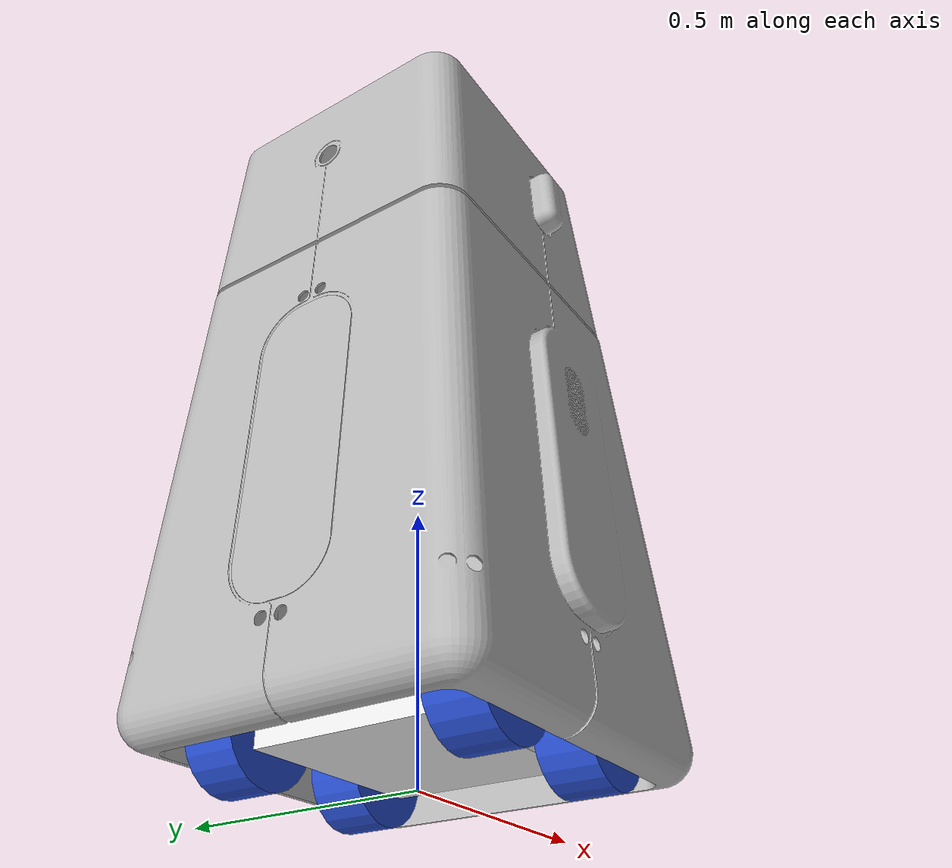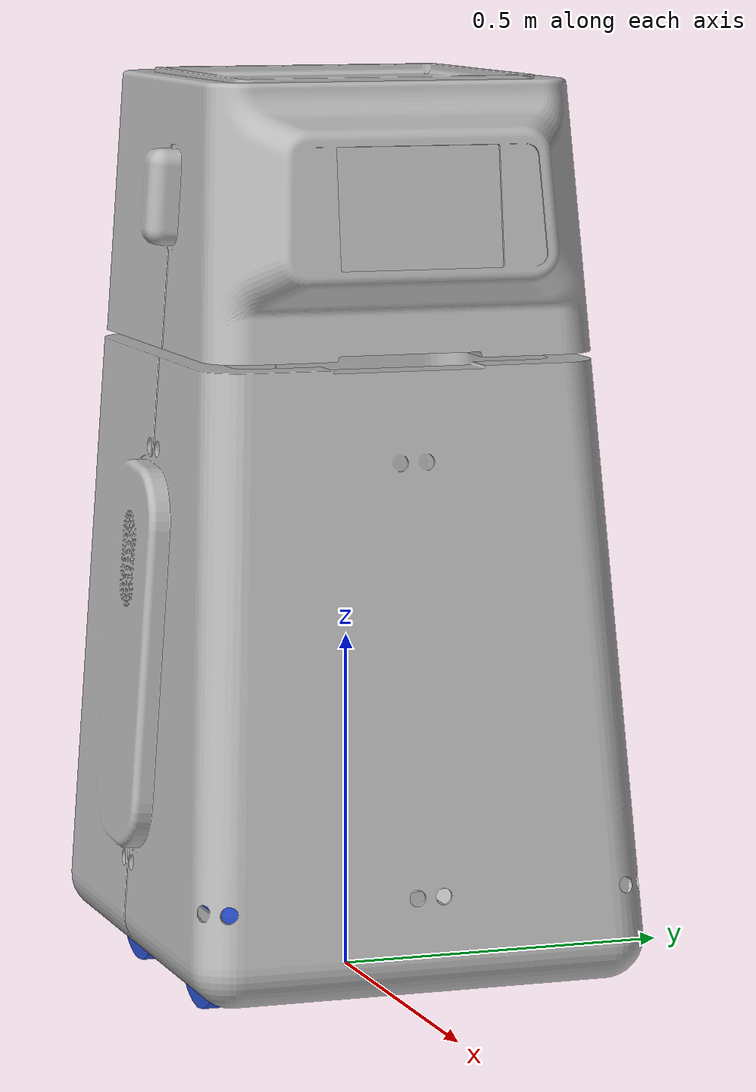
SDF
<sdf version='1.6'>
  <model name='cr2'>

    <static>true</static>
    <plugin name="sample" filename="libmove_object_plugin.so" />

    <link name='base_link'>
      <pose frame=''>0 0 0 0 -0 0</pose>
      <inertial>
        <pose frame=''>0.063545 -0.009655 0.290899 1.5708 -0 1.5708</pose>
        <mass>7.967</mass>
        <inertia>
          <ixx>1.23942</ixx>
          <ixy>-0.119632</ixy>
          <ixz>0.13679</ixz>
          <iyy>0.73365</iyy>
          <iyz>-0.015758</iyz>
          <izz>1.18615</izz>
        </inertia>
      </inertial>
      <collision name='base_link_collision'>
        <pose frame=''>0 0 0.1 1.5708 -0 1.5708</pose>
        <geometry>
          <box>
            <size>0.36 0.1 0.4</size>
          </box>
        </geometry>
        <surface>
          <contact>
            <ode/>
          </contact>
          <friction>
            <ode/>
          </friction>
        </surface>
      </collision>
      <collision name='base_link_fixed_joint_lump__body_collision_1'>
        <pose frame=''>0.39 -0.36 0.03 1.5708 -0 -3.14159</pose>
        <geometry>
          <mesh>
            <scale>0.0015 0.0015 0.0015</scale>
            <uri>model://cr2/meshes/body.STL</uri>
          </mesh>
        </geometry>
      </collision>
      <collision name='base_link_fixed_joint_lump__back_cover_collision_2'>
        <pose frame=''>-0.38 0.345 0.03 1.50987 0 -1.5708</pose>
        <geometry>
          <mesh>
            <scale>0.0015 0.0015 0.0015</scale>
            <uri>model://cr2/meshes/back_cover.stl</uri>
          </mesh>
        </geometry>
      </collision>
      <collision name='base_link_fixed_joint_lump__head_collision_3'>
        <pose frame=''>0.347 -0.32 0.055 1.5708 -0 -3.14159</pose>
        <geometry>
          <mesh>
            <scale>0.0015 0.0015 0.0015</scale>
            <uri>model://cr2/meshes/head.STL</uri>
          </mesh>
        </geometry>
      </collision>
      <collision name='base_link_fixed_joint_lump__laser_link_collision_4'>
        <pose frame=''>-0.02 0.005 0.95 3.14159 -0 -3.14159</pose>
        <geometry>
          <cylinder>
            <length>0.041</length>
            <radius>0.038</radius>
          </cylinder>
        </geometry>
      </collision>
      <collision name='base_link_fixed_joint_lump__laser_oscillator_collision_5'>
        <pose frame=''>-0.02 0.005 0.9345 3.14159 -0 -3.14159</pose>
        <geometry>
          <cylinder>
            <length>0.001</length>
            <radius>0.038</radius>
          </cylinder>
        </geometry>
        <surface>
          <contact>
            <ode/>
          </contact>
          <friction>
            <ode/>
          </friction>
        </surface>
      </collision>
      <collision name='base_link_fixed_joint_lump__monitor_collision_6'>
        <pose frame=''>0.327 0.005 1.155 1.5708 -1.45772 -3.14159</pose>
        <geometry>
          <box>
            <size>0.18 0.001 0.27</size>
          </box>
        </geometry>
      </collision>
      <collision name='base_link_fixed_joint_lump__tray_collision_7'>
        <pose frame=''>-0.378 0.345 1.305 1.5708 -0 -3.14159</pose>
        <geometry>
          <mesh>
            <scale>0.0015 0.0015 0.0015</scale>
            <uri>model://cr2/meshes/tray.stl</uri>
          </mesh>
        </geometry>
      </collision>
      <collision name='base_link_fixed_joint_lump__motor_holder_FL_collision_8'>
        <pose frame=''>-0.16 0.1925 0.092 1.5708 -0 0</pose>
        <geometry>
          <cylinder>
            <length>0.025</length>
            <radius>0.02</radius>
          </cylinder>
        </geometry>
      </collision>
      <collision name='base_link_fixed_joint_lump__motor_holder_FR_collision_9'>
        <pose frame=''>-0.16 -0.1925 0.092 1.5708 -0 0</pose>
        <geometry>
          <cylinder>
            <length>0.025</length>
            <radius>0.02</radius>
          </cylinder>
        </geometry>
      </collision>
      <collision name='base_link_fixed_joint_lump__motor_holder_RL_collision_10'>
        <pose frame=''>0.16 0.1925 0.092 1.5708 -0 0</pose>
        <geometry>
          <cylinder>
            <length>0.025</length>
            <radius>0.02</radius>
          </cylinder>
        </geometry>
        <surface>
          <contact>
            <ode>
              <kp>1e+07</kp>
              <kd>1</kd>
            </ode>
          </contact>
          <friction>
            <ode>
              <mu>1</mu>
              <mu2>1</mu2>
            </ode>
          </friction>
        </surface>
      </collision>
      <collision name='base_link_fixed_joint_lump__motor_holder_RR_collision_11'>
        <pose frame=''>0.16 -0.1925 0.092 1.5708 -0 0</pose>
        <geometry>
          <cylinder>
            <length>0.025</length>
            <radius>0.02</radius>
          </cylinder>
        </geometry>
      </collision>
      <visual name='base_link_visual'>
        <pose frame=''>0 0 0.1 1.5708 -0 1.5708</pose>
        <geometry>
          <box>
            <size>0.36 0.1 0.4</size>
          </box>
        </geometry>
        <material>
          <script>
            <name>Gazebo/White</name>
            <uri>file://media/materials/scripts/gazebo.material</uri>
          </script>
        </material>
      </visual>
      <visual name='base_link_fixed_joint_lump__body_visual_1'>
        <pose frame=''>0.39 -0.36 0.03 1.5708 -0 -3.14159</pose>
        <geometry>
          <mesh>
            <scale>0.0015 0.0015 0.0015</scale>
            <uri>model://cr2/meshes/body.STL</uri>
          </mesh>
        </geometry>
      </visual>
      <visual name='base_link_fixed_joint_lump__back_cover_visual_2'>
        <pose frame=''>-0.38 0.345 0.03 1.50987 0 -1.5708</pose>
        <geometry>
          <mesh>
            <scale>0.0015 0.0015 0.0015</scale>
            <uri>model://cr2/meshes/back_cover.stl</uri>
          </mesh>
        </geometry>
      </visual>
      <visual name='base_link_fixed_joint_lump__head_visual_3'>
        <pose frame=''>0.347 -0.32 0.055 1.5708 -0 -3.14159</pose>
        <geometry>
          <mesh>
            <scale>0.0015 0.0015 0.0015</scale>
            <uri>model://cr2/meshes/head.STL</uri>
          </mesh>
        </geometry>
      </visual>
      <visual name='base_link_fixed_joint_lump__laser_link_visual_4'>
        <pose frame=''>-0.02 0.005 0.95 3.14159 -0 -3.14159</pose>
        <geometry>
          <cylinder>
            <length>0.041</length>
            <radius>0.038</radius>
          </cylinder>
        </geometry>
      </visual>
      <visual name='base_link_fixed_joint_lump__laser_oscillator_visual_5'>
        <pose frame=''>-0.02 0.005 0.9345 3.14159 -0 -3.14159</pose>
        <geometry>
          <cylinder>
            <length>0.001</length>
            <radius>0.038</radius>
          </cylinder>
        </geometry>
        <material>
          <script>
            <name>Gazebo/Green</name>
            <uri>file://media/materials/scripts/gazebo.material</uri>
          </script>
        </material>
      </visual>
      <visual name='base_link_fixed_joint_lump__monitor_visual_6'>
        <pose frame=''>0.327 0.005 1.155 1.5708 -1.45772 -3.14159</pose>
        <geometry>
          <box>
            <size>0.18 0.001 0.27</size>
          </box>
        </geometry>
      </visual>
      <visual name='base_link_fixed_joint_lump__tray_visual_7'>
        <pose frame=''>-0.378 0.345 1.305 1.5708 -0 -3.14159</pose>
        <geometry>
          <mesh>
            <scale>0.0015 0.0015 0.0015</scale>
            <uri>model://cr2/meshes/tray.stl</uri>
          </mesh>
        </geometry>
      </visual>
      <visual name='base_link_fixed_joint_lump__motor_holder_FL_visual_8'>
        <pose frame=''>-0.16 0.1925 0.092 1.5708 -0 0</pose>
        <geometry>
          <cylinder>
            <length>0.025</length>
            <radius>0.02</radius>
          </cylinder>
        </geometry>
      </visual>
      <visual name='base_link_fixed_joint_lump__motor_holder_FR_visual_9'>
        <pose frame=''>-0.16 -0.1925 0.092 1.5708 -0 0</pose>
        <geometry>
          <cylinder>
            <length>0.025</length>
            <radius>0.02</radius>
          </cylinder>
        </geometry>
      </visual>
      <visual name='base_link_fixed_joint_lump__motor_holder_RL_visual_10'>
        <pose frame=''>0.16 0.1925 0.092 1.5708 -0 0</pose>
        <geometry>
          <cylinder>
            <length>0.025</length>
            <radius>0.02</radius>
          </cylinder>
        </geometry>
        <material>
          <script>
            <name>Gazebo/Red</name>
            <uri>file://media/materials/scripts/gazebo.material</uri>
          </script>
        </material>
      </visual>
      <visual name='base_link_fixed_joint_lump__motor_holder_RR_visual_11'>
        <pose frame=''>0.16 -0.1925 0.092 1.5708 -0 0</pose>
        <geometry>
          <cylinder>
            <length>0.025</length>
            <radius>0.02</radius>
          </cylinder>
        </geometry>
      </visual>
      <velocity_decay/>
      <gravity>1</gravity>
      <velocity_decay/>
      <sensor name='laser' type='ray'>
        <visualize>0</visualize>
        <update_rate>40</update_rate>
        <ray>
          <scan>
            <horizontal>
              <samples>1081</samples>
              <resolution>1</resolution>
              <min_angle>0</min_angle>
              <max_angle>6.28318</max_angle>
            </horizontal>
          </scan>
          <range>
            <min>0.15</min>
            <max>3</max>
            <resolution>0.01</resolution>
          </range>
          <noise>
            <type>gaussian</type>
            <mean>0</mean>
            <stddev>0.01</stddev>
          </noise>
        </ray>
        <plugin name='gazebo_ros_rplidar_controller' filename='libgazebo_ros_laser.so'>
          <topicName>front/scan</topicName>
          <frameName>laser_oscillator</frameName>
        </plugin>
        <pose frame=''>-0.02 0.005 0.9345 3.14159 -0 -3.14159</pose>
      </sensor>
      <gravity>1</gravity>
      <velocity_decay/>
      <self_collide>0</self_collide>
    </link>
    <link name='wheel_FL_link'>
      <pose frame=''>-0.16 0.23 0.092 1.5708 -0 0</pose>
      <inertial>
        <pose frame=''>0 0 0 0 -0 0</pose>
        <mass>0.1</mass>
        <inertia>
          <ixx>0.000333333</ixx>
          <ixy>0</ixy>
          <ixz>0</ixz>
          <iyy>0.000333333</iyy>
          <iyz>0</iyz>
          <izz>0.0005</izz>
        </inertia>
      </inertial>
      <collision name='wheel_FL_link_collision'>
        <pose frame=''>0 0 0 0 -0 0</pose>
        <geometry>
          <cylinder>
            <length>0.1</length>
            <radius>0.1</radius>
          </cylinder>
        </geometry>
        <surface>
          <contact>
            <ode>
              <kp>1e+07</kp>
              <kd>1</kd>
            </ode>
          </contact>
          <friction>
            <ode>
              <mu>0</mu>
              <mu2>0</mu2>
            </ode>
          </friction>
        </surface>
      </collision>
      <visual name='wheel_FL_link_visual'>
        <pose frame=''>0 0 0 0 -0 0</pose>
        <geometry>
          <cylinder>
            <length>0.1</length>
            <radius>0.1</radius>
          </cylinder>
        </geometry>
        <material>
          <script>
            <name>Gazebo/Blue</name>
            <uri>file://media/materials/scripts/gazebo.material</uri>
          </script>
        </material>
      </visual>
      <gravity>1</gravity>
      <velocity_decay/>
      <self_collide>0</self_collide>
    </link>
    <joint name='wheel_motor_FL_joint' type='revolute'>
      <child>wheel_FL_link</child>
      <parent>base_link</parent>
      <axis>
        <xyz>0 -1 0</xyz>
        <limit>
          <lower>-1e+16</lower>
          <upper>1e+16</upper>
        </limit>
        <dynamics>
          <spring_reference>0</spring_reference>
          <spring_stiffness>0</spring_stiffness>
        </dynamics>
        <use_parent_model_frame>1</use_parent_model_frame>
      </axis>
    </joint>
    <link name='wheel_FR_link'>
      <pose frame=''>-0.16 -0.23 0.092 1.5708 -0 0</pose>
      <inertial>
        <pose frame=''>0 0 0 0 -0 0</pose>
        <mass>0.1</mass>
        <inertia>
          <ixx>0.000333333</ixx>
          <ixy>0</ixy>
          <ixz>0</ixz>
          <iyy>0.000333333</iyy>
          <iyz>0</iyz>
          <izz>0.0005</izz>
        </inertia>
      </inertial>
      <collision name='wheel_FR_link_collision'>
        <pose frame=''>0 0 0 0 -0 0</pose>
        <geometry>
          <cylinder>
            <length>0.1</length>
            <radius>0.1</radius>
          </cylinder>
        </geometry>
        <surface>
          <contact>
            <ode>
              <kp>1e+07</kp>
              <kd>1</kd>
            </ode>
          </contact>
          <friction>
            <ode>
              <mu>0</mu>
              <mu2>0</mu2>
            </ode>
          </friction>
        </surface>
      </collision>
      <visual name='wheel_FR_link_visual'>
        <pose frame=''>0 0 0 0 -0 0</pose>
        <geometry>
          <cylinder>
            <length>0.1</length>
            <radius>0.1</radius>
          </cylinder>
        </geometry>
        <material>
          <script>
            <name>Gazebo/Blue</name>
            <uri>file://media/materials/scripts/gazebo.material</uri>
          </script>
        </material>
      </visual>
      <gravity>1</gravity>
      <velocity_decay/>
      <self_collide>0</self_collide>
    </link>
    <joint name='wheel_motor_FR_joint' type='revolute'>
      <child>wheel_FR_link</child>
      <parent>base_link</parent>
      <axis>
        <xyz>0 -1 0</xyz>
        <limit>
          <lower>-1e+16</lower>
          <upper>1e+16</upper>
        </limit>
        <dynamics>
          <spring_reference>0</spring_reference>
          <spring_stiffness>0</spring_stiffness>
        </dynamics>
        <use_parent_model_frame>1</use_parent_model_frame>
      </axis>
    </joint>
    <link name='wheel_RL_link'>
      <pose frame=''>0.16 0.23 0.092 1.5708 -0 0</pose>
      <inertial>
        <pose frame=''>0 0 0 0 -0 0</pose>
        <mass>0.1</mass>
        <inertia>
          <ixx>0.000333333</ixx>
          <ixy>0</ixy>
          <ixz>0</ixz>
          <iyy>0.000333333</iyy>
          <iyz>0</iyz>
          <izz>0.0005</izz>
        </inertia>
      </inertial>
      <collision name='wheel_RL_link_collision'>
        <pose frame=''>0 0 0 0 -0 0</pose>
        <geometry>
          <cylinder>
            <length>0.1</length>
            <radius>0.1</radius>
          </cylinder>
        </geometry>
        <surface>
          <contact>
            <ode>
              <kp>1e+07</kp>
              <kd>1</kd>
            </ode>
          </contact>
          <friction>
            <ode>
              <mu>0</mu>
              <mu2>0</mu2>
            </ode>
          </friction>
        </surface>
      </collision>
      <visual name='wheel_RL_link_visual'>
        <pose frame=''>0 0 0 0 -0 0</pose>
        <geometry>
          <cylinder>
            <length>0.1</length>
            <radius>0.1</radius>
          </cylinder>
        </geometry>
        <material>
          <script>
            <name>Gazebo/Blue</name>
            <uri>file://media/materials/scripts/gazebo.material</uri>
          </script>
        </material>
      </visual>
      <gravity>1</gravity>
      <velocity_decay/>
      <self_collide>0</self_collide>
    </link>
    <joint name='wheel_motor_RL_joint' type='revolute'>
      <child>wheel_RL_link</child>
      <parent>base_link</parent>
      <axis>
        <xyz>0 -1 0</xyz>
        <limit>
          <lower>-1e+16</lower>
          <upper>1e+16</upper>
        </limit>
        <dynamics>
          <spring_reference>0</spring_reference>
          <spring_stiffness>0</spring_stiffness>
        </dynamics>
        <use_parent_model_frame>1</use_parent_model_frame>
      </axis>
      <physics>
        <ode>
          <limit>
            <cfm>0</cfm>
            <erp>0.2</erp>
          </limit>
        </ode>
      </physics>
    </joint>
    <link name='wheel_RR_link'>
      <pose frame=''>0.16 -0.23 0.092 1.5708 -0 0</pose>
      <inertial>
        <pose frame=''>0 0 0 0 -0 0</pose>
        <mass>0.1</mass>
        <inertia>
          <ixx>0.000333333</ixx>
          <ixy>0</ixy>
          <ixz>0</ixz>
          <iyy>0.000333333</iyy>
          <iyz>0</iyz>
          <izz>0.0005</izz>
        </inertia>
      </inertial>
      <collision name='wheel_RR_link_collision'>
        <pose frame=''>0 0 0 0 -0 0</pose>
        <geometry>
          <cylinder>
            <length>0.1</length>
            <radius>0.1</radius>
          </cylinder>
        </geometry>
        <surface>
          <contact>
            <ode>
              <kp>1e+07</kp>
              <kd>1</kd>
            </ode>
          </contact>
          <friction>
            <ode>
              <mu>0</mu>
              <mu2>0</mu2>
            </ode>
          </friction>
        </surface>
      </collision>
      <visual name='wheel_RR_link_visual'>
        <pose frame=''>0 0 0 0 -0 0</pose>
        <geometry>
          <cylinder>
            <length>0.1</length>
            <radius>0.1</radius>
          </cylinder>
        </geometry>
        <material>
          <script>
            <name>Gazebo/Blue</name>
            <uri>file://media/materials/scripts/gazebo.material</uri>
          </script>
        </material>
      </visual>
      <gravity>1</gravity>
      <velocity_decay/>
      <self_collide>0</self_collide>
    </link>
    <joint name='wheel_motor_RR_joint' type='revolute'>
      <child>wheel_RR_link</child>
      <parent>base_link</parent>
      <axis>
        <xyz>0 -1 0</xyz>
        <limit>
          <lower>-1e+16</lower>
          <upper>1e+16</upper>
        </limit>
        <dynamics>
          <spring_reference>0</spring_reference>
          <spring_stiffness>0</spring_stiffness>
        </dynamics>
        <use_parent_model_frame>1</use_parent_model_frame>
      </axis>
    </joint>
    <static>0</static>
    <plugin name='gazebo_ros_control' filename='libgazebo_ros_control.so'>
      <robotNamespace>/</robotNamespace>
    </plugin>
    <plugin name='ridgeback_ros_force_based_move' filename='libridgeback_ros_force_based_move.so'>
      <robotNamespace>/</robotNamespace>
      <commandTopic>cmd_vel</commandTopic>
      <odometryTopic>odom</odometryTopic>
      <odometryFrame>odom</odometryFrame>
      <odometryRate>25.0</odometryRate>
      <robotBaseFrame>base_link</robotBaseFrame>
      <cmdVelTimeOut>0.25</cmdVelTimeOut>
      <publishOdometryTf>0</publishOdometryTf>
      <yaw_velocity_p_gain>500.0</yaw_velocity_p_gain>
      <x_velocity_p_gain>10000.0</x_velocity_p_gain>
      <y_velocity_p_gain>10000.0</y_velocity_p_gain>
    </plugin>
  </model>
</sdf>
